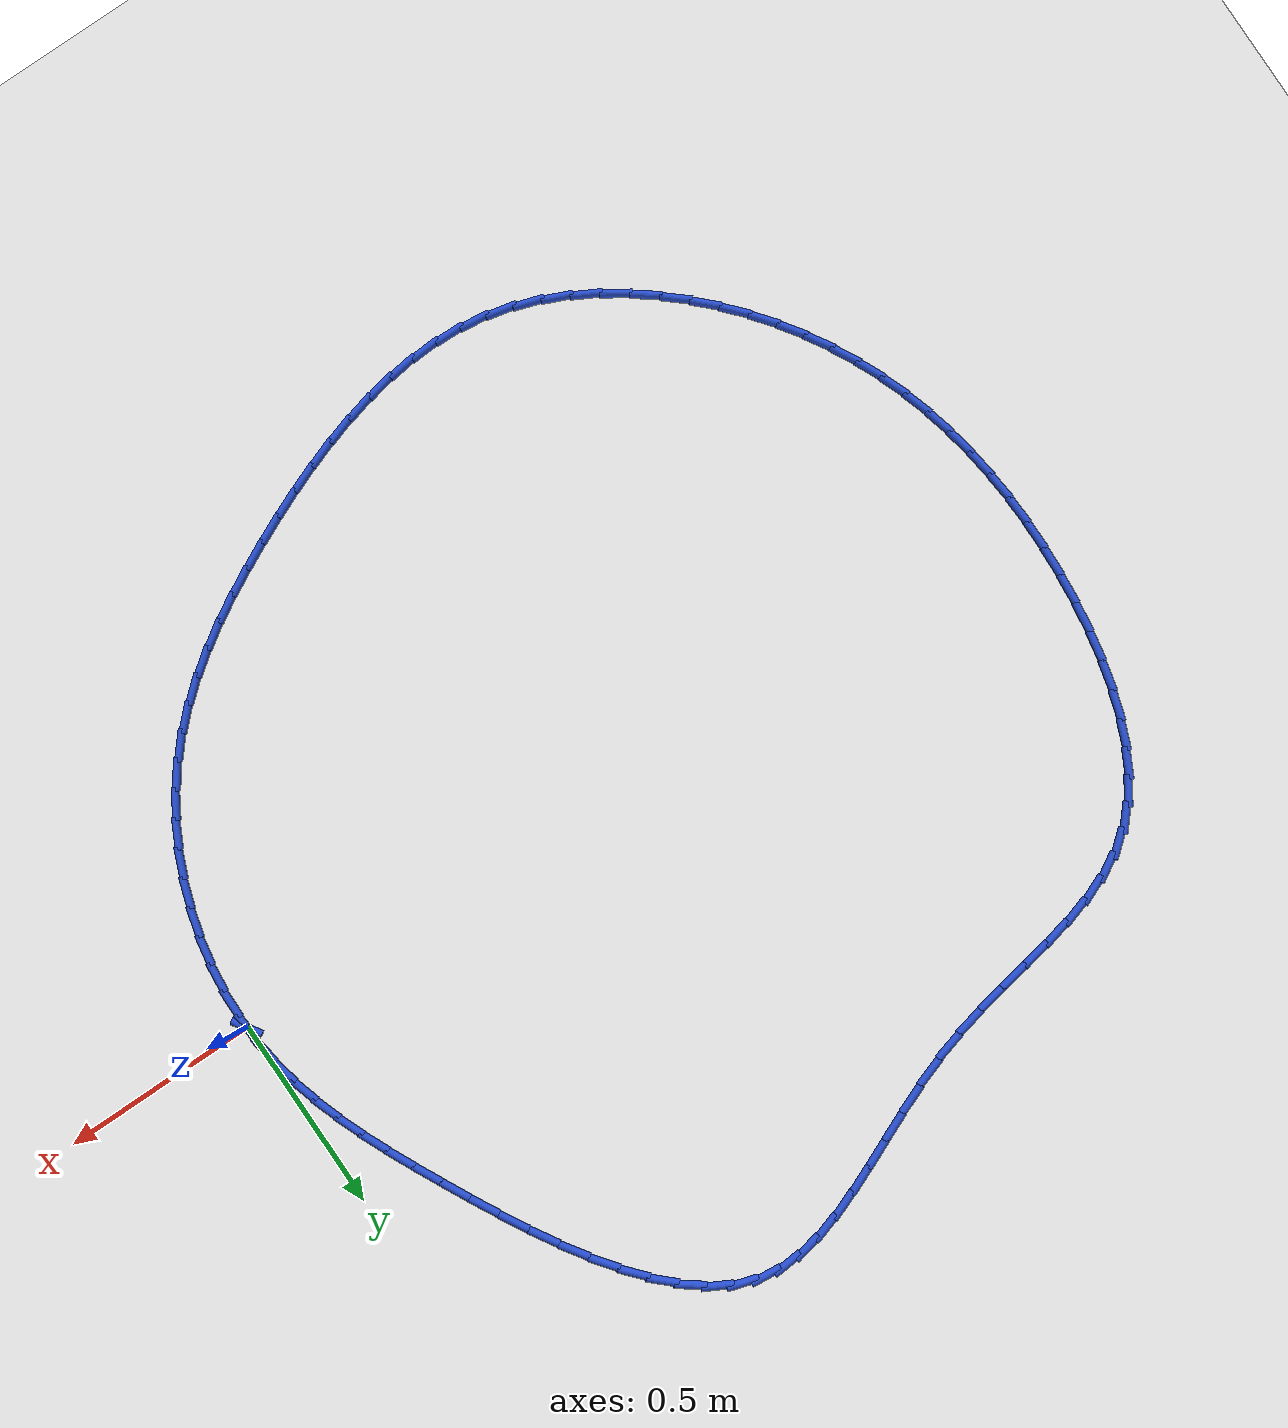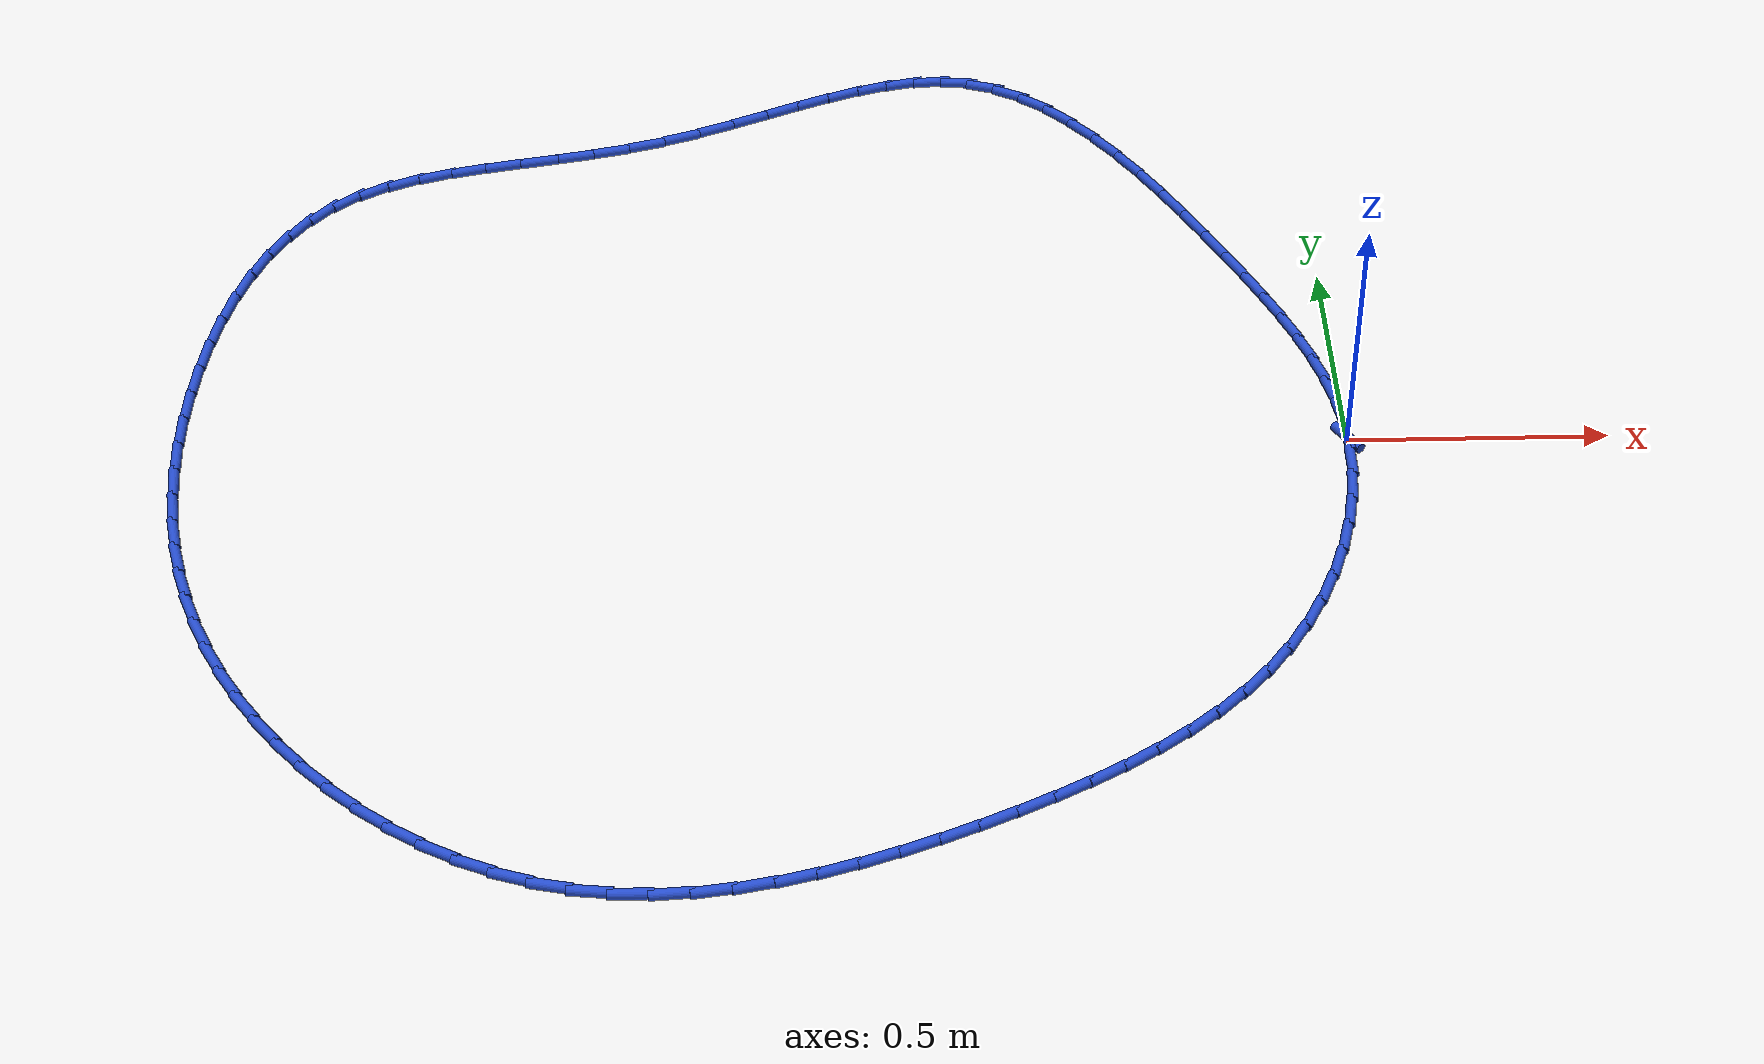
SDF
<sdf version="1.6">
 <world name="default">
  <light name="sun" type="directional">
   <pose>0 0 10 0 -0 0</pose>
   <diffuse>0.8 0.8 0.8 1</diffuse>
   <specular>0.2 0.2 0.2 1</specular>
   <attenuation>
    <range>1000</range>
    <constant>0.9</constant>
    <linear>0.01</linear>
    <quadratic>0.001</quadratic>
   </attenuation>
   <direction>-0.5 0.1 -0.9</direction>
  </light>
  <model name="ground_plane">
   <static>1</static>
   <link name="link">
    <collision name="collision">
     <geometry><plane><normal>0 0 1</normal><size>100 100</size></plane></geometry>
     <surface><friction><ode><mu>100</mu><mu2>50</mu2></ode></friction></surface>
    </collision>
    <visual name="visual">
     <cast_shadows>0</cast_shadows>
     <geometry><plane><normal>0 0 1</normal><size>100 100</size></plane></geometry>
     <material>
      <script><uri>file://media/materials/scripts/gazebo.material</uri><name>Gazebo/WhiteGlow</name></script>
     </material>
    </visual>
   </link>
  </model>
  <gravity>0 0 -9.8</gravity>
  <magnetic_field>6e-06 2.3e-05 -4.2e-05</magnetic_field>
  <atmosphere type="adiabatic"/>
  <physics name="default_physics" default="0" type="ode">
   <max_step_size>0.001</max_step_size>
   <real_time_factor>1</real_time_factor>
   <real_time_update_rate>1000</real_time_update_rate>
  </physics>
  <scene><ambient>0.4 0.4 0.4 1</ambient><background>0.7 0.7 0.7 1</background><shadows>1</shadows></scene>
  <spherical_coordinates>
   <surface_model>EARTH_WGS84</surface_model>
   <latitude_deg>0</latitude_deg>
   <longitude_deg>0</longitude_deg>
   <elevation>0</elevation>
   <heading_deg>0</heading_deg>
  </spherical_coordinates>
  <model name="line">
   <link name="link_0">
    <pose>-2.42861286636753e-17 1.249000902703301e-16 0.01 0 1.57 -1.5004241428444405</pose>
    <collision name="collision">
     <geometry><cylinder><radius>0.01</radius><length>0.08</length></cylinder></geometry>
    </collision>
    <visual name="visual">
     <material>
      <script><name>Gazebo/Blue</name><uri>file://media/materials/scripts/gazebo.material</uri></script>
     </material>
     <geometry><cylinder><radius>0.01</radius><length>0.08</length></cylinder></geometry>
    </visual>
   </link>
   <link name="link_1">
    <pose>-0.00477601694408151 0.06775589546085022 0.01 0 1.57 -1.4189308721183949</pose>
    <collision name="collision">
     <geometry><cylinder><radius>0.01</radius><length>0.08</length></cylinder></geometry>
    </collision>
    <visual name="visual">
     <material>
      <script><name>Gazebo/Blue</name><uri>file://media/materials/scripts/gazebo.material</uri></script>
     </material>
     <geometry><cylinder><radius>0.01</radius><length>0.08</length></cylinder></geometry>
    </visual>
   </link>
   <link name="link_2">
    <pose>-0.014967423616918156 0.13434732293556742 0.01 0 1.57 -1.3449747412913828</pose>
    <collision name="collision">
     <geometry><cylinder><radius>0.01</radius><length>0.08</length></cylinder></geometry>
    </collision>
    <visual name="visual">
     <material>
      <script><name>Gazebo/Blue</name><uri>file://media/materials/scripts/gazebo.material</uri></script>
     </material>
     <geometry><cylinder><radius>0.01</radius><length>0.08</length></cylinder></geometry>
    </visual>
   </link>
   <link name="link_3">
    <pose>-0.03008474728425073 0.20014915707746528 0.01 0 1.57 -1.280214814481173</pose>
    <collision name="collision">
     <geometry><cylinder><radius>0.01</radius><length>0.08</length></cylinder></geometry>
    </collision>
    <visual name="visual">
     <material>
      <script><name>Gazebo/Blue</name><uri>file://media/materials/scripts/gazebo.material</uri></script>
     </material>
     <geometry><cylinder><radius>0.01</radius><length>0.08</length></cylinder></geometry>
    </visual>
   </link>
   <link name="link_4">
    <pose>-0.049638515211819924 0.26553627253985734 0.01 0 1.57 -1.2255696863646401</pose>
    <collision name="collision">
     <geometry><cylinder><radius>0.01</radius><length>0.08</length></cylinder></geometry>
    </collision>
    <visual name="visual">
     <material>
      <script><name>Gazebo/Blue</name><uri>file://media/materials/scripts/gazebo.material</uri></script>
     </material>
     <geometry><cylinder><radius>0.01</radius><length>0.08</length></cylinder></geometry>
    </visual>
   </link>
   <link name="link_5">
    <pose>-0.07313925466536642 0.3308835439760569 0.01 0 1.57 -1.1813277615212272</pose>
    <collision name="collision">
     <geometry><cylinder><radius>0.01</radius><length>0.08</length></cylinder></geometry>
    </collision>
    <visual name="visual">
     <material>
      <script><name>Gazebo/Blue</name><uri>file://media/materials/scripts/gazebo.material</uri></script>
     </material>
     <geometry><cylinder><radius>0.01</radius><length>0.08</length></cylinder></geometry>
    </visual>
   </link>
   <link name="link_6">
    <pose>-0.100097492910631 0.3965658460393779 0.01 0 1.57 -1.1473191650190024</pose>
    <collision name="collision">
     <geometry><cylinder><radius>0.01</radius><length>0.08</length></cylinder></geometry>
    </collision>
    <visual name="visual">
     <material>
      <script><name>Gazebo/Blue</name><uri>file://media/materials/scripts/gazebo.material</uri></script>
     </material>
     <geometry><cylinder><radius>0.01</radius><length>0.08</length></cylinder></geometry>
    </visual>
   </link>
   <link name="link_7">
    <pose>-0.1300237572133543 0.46295805338313345 0.01 0 1.57 -1.1230852943788612</pose>
    <collision name="collision">
     <geometry><cylinder><radius>0.01</radius><length>0.08</length></cylinder></geometry>
    </collision>
    <visual name="visual">
     <material>
      <script><name>Gazebo/Blue</name><uri>file://media/materials/scripts/gazebo.material</uri></script>
     </material>
     <geometry><cylinder><radius>0.01</radius><length>0.08</length></cylinder></geometry>
    </visual>
   </link>
   <link name="link_8">
    <pose>-0.16242857483927703 0.5304350406606371 0.01 0 1.57 -1.1080004753264519</pose>
    <collision name="collision">
     <geometry><cylinder><radius>0.01</radius><length>0.08</length></cylinder></geometry>
    </collision>
    <visual name="visual">
     <material>
      <script><name>Gazebo/Blue</name><uri>file://media/materials/scripts/gazebo.material</uri></script>
     </material>
     <geometry><cylinder><radius>0.01</radius><length>0.08</length></cylinder></geometry>
    </visual>
   </link>
   <link name="link_9">
    <pose>-0.19682290641893088 0.5993704319639994 0.01 0 1.57 -1.0972849489356093</pose>
    <collision name="collision">
     <geometry><cylinder><radius>0.01</radius><length>0.08</length></cylinder></geometry>
    </collision>
    <visual name="visual">
     <material>
      <script><name>Gazebo/Blue</name><uri>file://media/materials/scripts/gazebo.material</uri></script>
     </material>
     <geometry><cylinder><radius>0.01</radius><length>0.08</length></cylinder></geometry>
    </visual>
   </link>
   <link name="link_10">
    <pose>-0.2328652948491554 0.6697119730943581 0.01 0 1.57 -1.0805003190553257</pose>
    <collision name="collision">
     <geometry><cylinder><radius>0.01</radius><length>0.08</length></cylinder></geometry>
    </collision>
    <visual name="visual">
     <material>
      <script><name>Gazebo/Blue</name><uri>file://media/materials/scripts/gazebo.material</uri></script>
     </material>
     <geometry><cylinder><radius>0.01</radius><length>0.08</length></cylinder></geometry>
    </visual>
   </link>
   <link name="link_11">
    <pose>-0.270576355979416 0.7403625755775054 0.01 0 1.57 -1.055733806610953</pose>
    <collision name="collision">
     <geometry><cylinder><radius>0.01</radius><length>0.08</length></cylinder></geometry>
    </collision>
    <visual name="visual">
     <material>
      <script><name>Gazebo/Blue</name><uri>file://media/materials/scripts/gazebo.material</uri></script>
     </material>
     <geometry><cylinder><radius>0.01</radius><length>0.08</length></cylinder></geometry>
    </visual>
   </link>
   <link name="link_12">
    <pose>-0.3100312191182713 0.8100678413967359 0.01 0 1.57 -1.0220267726518835</pose>
    <collision name="collision">
     <geometry><cylinder><radius>0.01</radius><length>0.08</length></cylinder></geometry>
    </collision>
    <visual name="visual">
     <material>
      <script><name>Gazebo/Blue</name><uri>file://media/materials/scripts/gazebo.material</uri></script>
     </material>
     <geometry><cylinder><radius>0.01</radius><length>0.08</length></cylinder></geometry>
    </visual>
   </link>
   <link name="link_13">
    <pose>-0.3513050135742803 0.8775733725353443 0.01 0 1.57 -0.9777638944376631</pose>
    <collision name="collision">
     <geometry><cylinder><radius>0.01</radius><length>0.08</length></cylinder></geometry>
    </collision>
    <visual name="visual">
     <material>
      <script><name>Gazebo/Blue</name><uri>file://media/materials/scripts/gazebo.material</uri></script>
     </material>
     <geometry><cylinder><radius>0.01</radius><length>0.08</length></cylinder></geometry>
    </visual>
   </link>
   <link name="link_14">
    <pose>-0.39447286865600184 0.9416247709766248 0.01 0 1.57 -0.9205364838850414</pose>
    <collision name="collision">
     <geometry><cylinder><radius>0.01</radius><length>0.08</length></cylinder></geometry>
    </collision>
    <visual name="visual">
     <material>
      <script><name>Gazebo/Blue</name><uri>file://media/materials/scripts/gazebo.material</uri></script>
     </material>
     <geometry><cylinder><radius>0.01</radius><length>0.08</length></cylinder></geometry>
    </visual>
   </link>
   <link name="link_15">
    <pose>-0.43960991367199453 1.0009676387038722 0.01 0 1.57 -0.8469600363308281</pose>
    <collision name="collision">
     <geometry><cylinder><radius>0.01</radius><length>0.08</length></cylinder></geometry>
    </collision>
    <visual name="visual">
     <material>
      <script><name>Gazebo/Blue</name><uri>file://media/materials/scripts/gazebo.material</uri></script>
     </material>
     <geometry><cylinder><radius>0.01</radius><length>0.08</length></cylinder></geometry>
    </visual>
   </link>
   <link name="link_16">
    <pose>-0.4867912779308172 1.0543475777003806 0.01 0 1.57 -0.7525366685008904</pose>
    <collision name="collision">
     <geometry><cylinder><radius>0.01</radius><length>0.08</length></cylinder></geometry>
    </collision>
    <visual name="visual">
     <material>
      <script><name>Gazebo/Blue</name><uri>file://media/materials/scripts/gazebo.material</uri></script>
     </material>
     <geometry><cylinder><radius>0.01</radius><length>0.08</length></cylinder></geometry>
    </visual>
   </link>
   <link name="link_17">
    <pose>-0.5360920907410289 1.1005101899494452 0.01 0 1.57 -0.631833959872122</pose>
    <collision name="collision">
     <geometry><cylinder><radius>0.01</radius><length>0.08</length></cylinder></geometry>
    </collision>
    <visual name="visual">
     <material>
      <script><name>Gazebo/Blue</name><uri>file://media/materials/scripts/gazebo.material</uri></script>
     </material>
     <geometry><cylinder><radius>0.01</radius><length>0.08</length></cylinder></geometry>
    </visual>
   </link>
   <link name="link_18">
    <pose>-0.5875874814111881 1.1382010774343598 0.01 0 1.57 -0.4796205093005573</pose>
    <collision name="collision">
     <geometry><cylinder><radius>0.01</radius><length>0.08</length></cylinder></geometry>
    </collision>
    <visual name="visual">
     <material>
      <script><name>Gazebo/Blue</name><uri>file://media/materials/scripts/gazebo.material</uri></script>
     </material>
     <geometry><cylinder><radius>0.01</radius><length>0.08</length></cylinder></geometry>
    </visual>
   </link>
   <link name="link_19">
    <pose>-0.641352579249854 1.1661658421384198 0.01 0 1.57 -0.2939282067975372</pose>
    <collision name="collision">
     <geometry><cylinder><radius>0.01</radius><length>0.08</length></cylinder></geometry>
    </collision>
    <visual name="visual">
     <material>
      <script><name>Gazebo/Blue</name><uri>file://media/materials/scripts/gazebo.material</uri></script>
     </material>
     <geometry><cylinder><radius>0.01</radius><length>0.08</length></cylinder></geometry>
    </visual>
   </link>
   <link name="link_20">
    <pose>-0.6974625135655852 1.183150086044919 0.01 0 1.57 -0.08918605198172115</pose>
    <collision name="collision">
     <geometry><cylinder><radius>0.01</radius><length>0.08</length></cylinder></geometry>
    </collision>
    <visual name="visual">
     <material>
      <script><name>Gazebo/Blue</name><uri>file://media/materials/scripts/gazebo.material</uri></script>
     </material>
     <geometry><cylinder><radius>0.01</radius><length>0.08</length></cylinder></geometry>
    </visual>
   </link>
   <link name="link_21">
    <pose>-0.7559564777158664 1.1883808077837392 0.01 0 1.57 0.08652087412443932</pose>
    <collision name="collision">
     <geometry><cylinder><radius>0.01</radius><length>0.08</length></cylinder></geometry>
    </collision>
    <visual name="visual">
     <material>
      <script><name>Gazebo/Blue</name><uri>file://media/materials/scripts/gazebo.material</uri></script>
     </material>
     <geometry><cylinder><radius>0.01</radius><length>0.08</length></cylinder></geometry>
    </visual>
   </link>
   <link name="link_22">
    <pose>-0.8167224915425655 1.1831101207040606 0.01 0 1.57 0.21886301353608173</pose>
    <collision name="collision">
     <geometry><cylinder><radius>0.01</radius><length>0.08</length></cylinder></geometry>
    </collision>
    <visual name="visual">
     <material>
      <script><name>Gazebo/Blue</name><uri>file://media/materials/scripts/gazebo.material</uri></script>
     </material>
     <geometry><cylinder><radius>0.01</radius><length>0.08</length></cylinder></geometry>
    </visual>
   </link>
   <link name="link_23">
    <pose>-0.8796088290724194 1.169122571596993 0.01 0 1.57 0.31202697062691764</pose>
    <collision name="collision">
     <geometry><cylinder><radius>0.01</radius><length>0.08</length></cylinder></geometry>
    </collision>
    <visual name="visual">
     <material>
      <script><name>Gazebo/Blue</name><uri>file://media/materials/scripts/gazebo.material</uri></script>
     </material>
     <geometry><cylinder><radius>0.01</radius><length>0.08</length></cylinder></geometry>
    </visual>
   </link>
   <link name="link_24">
    <pose>-0.9444637641530221 1.1482027096534482 0.01 0 1.57 0.3727100899897233</pose>
    <collision name="collision">
     <geometry><cylinder><radius>0.01</radius><length>0.08</length></cylinder></geometry>
    </collision>
    <visual name="visual">
     <material>
      <script><name>Gazebo/Blue</name><uri>file://media/materials/scripts/gazebo.material</uri></script>
     </material>
     <geometry><cylinder><radius>0.01</radius><length>0.08</length></cylinder></geometry>
    </visual>
   </link>
   <link name="link_25">
    <pose>-1.0111355706319682 1.122135084064338 0.01 0 1.57 0.4066654066522746</pose>
    <collision name="collision">
     <geometry><cylinder><radius>0.01</radius><length>0.08</length></cylinder></geometry>
    </collision>
    <visual name="visual">
     <material>
      <script><name>Gazebo/Blue</name><uri>file://media/materials/scripts/gazebo.material</uri></script>
     </material>
     <geometry><cylinder><radius>0.01</radius><length>0.08</length></cylinder></geometry>
    </visual>
   </link>
   <link name="link_26">
    <pose>-1.0794725223568513 1.092704244020574 0.01 0 1.57 0.4178045884942086</pose>
    <collision name="collision">
     <geometry><cylinder><radius>0.01</radius><length>0.08</length></cylinder></geometry>
    </collision>
    <visual name="visual">
     <material>
      <script><name>Gazebo/Blue</name><uri>file://media/materials/scripts/gazebo.material</uri></script>
     </material>
     <geometry><cylinder><radius>0.01</radius><length>0.08</length></cylinder></geometry>
    </visual>
   </link>
   <link name="link_27">
    <pose>-1.1493228931752653 1.0616947387130675 0.01 0 1.57 0.4082581201088372</pose>
    <collision name="collision">
     <geometry><cylinder><radius>0.01</radius><length>0.08</length></cylinder></geometry>
    </collision>
    <visual name="visual">
     <material>
      <script><name>Gazebo/Blue</name><uri>file://media/materials/scripts/gazebo.material</uri></script>
     </material>
     <geometry><cylinder><radius>0.01</radius><length>0.08</length></cylinder></geometry>
    </visual>
   </link>
   <link name="link_28">
    <pose>-1.220534956934804 1.03089111733273 0.01 0 1.57 0.3786525501528418</pose>
    <collision name="collision">
     <geometry><cylinder><radius>0.01</radius><length>0.08</length></cylinder></geometry>
    </collision>
    <visual name="visual">
     <material>
      <script><name>Gazebo/Blue</name><uri>file://media/materials/scripts/gazebo.material</uri></script>
     </material>
     <geometry><cylinder><radius>0.01</radius><length>0.08</length></cylinder></geometry>
    </visual>
   </link>
   <link name="link_29">
    <pose>-1.2929569874830613 1.0020779290704733 0.01 0 1.57 0.32841371684221204</pose>
    <collision name="collision">
     <geometry><cylinder><radius>0.01</radius><length>0.08</length></cylinder></geometry>
    </collision>
    <visual name="visual">
     <material>
      <script><name>Gazebo/Blue</name><uri>file://media/materials/scripts/gazebo.material</uri></script>
     </material>
     <geometry><cylinder><radius>0.01</radius><length>0.08</length></cylinder></geometry>
    </visual>
   </link>
   <link name="link_30">
    <pose>-1.3664371817624026 0.9770393002869852 0.01 0 1.57 0.26550910407413436</pose>
    <collision name="collision">
     <geometry><cylinder><radius>0.01</radius><length>0.08</length></cylinder></geometry>
    </collision>
    <visual name="visual">
     <material>
      <script><name>Gazebo/Blue</name><uri>file://media/materials/scripts/gazebo.material</uri></script>
     </material>
     <geometry><cylinder><radius>0.01</radius><length>0.08</length></cylinder></geometry>
    </visual>
   </link>
   <link name="link_31">
    <pose>-1.4406941117824714 0.9568466705715823 0.01 0 1.57 0.21766108257038289</pose>
    <collision name="collision">
     <geometry><cylinder><radius>0.01</radius><length>0.08</length></cylinder></geometry>
    </collision>
    <visual name="visual">
     <material>
      <script><name>Gazebo/Blue</name><uri>file://media/materials/scripts/gazebo.material</uri></script>
     </material>
     <geometry><cylinder><radius>0.01</radius><length>0.08</length></cylinder></geometry>
    </visual>
   </link>
   <link name="link_32">
    <pose>-1.515051650768223 0.9404013985220834 0.01 0 1.57 0.19042846810005598</pose>
    <collision name="collision">
     <geometry><cylinder><radius>0.01</radius><length>0.08</length></cylinder></geometry>
    </collision>
    <visual name="visual">
     <material>
      <script><name>Gazebo/Blue</name><uri>file://media/materials/scripts/gazebo.material</uri></script>
     </material>
     <geometry><cylinder><radius>0.01</radius><length>0.08</length></cylinder></geometry>
    </visual>
   </link>
   <link name="link_33">
    <pose>-1.5887588189696302 0.9261932959455191 0.01 0 1.57 0.1843294293974688</pose>
    <collision name="collision">
     <geometry><cylinder><radius>0.01</radius><length>0.08</length></cylinder></geometry>
    </collision>
    <visual name="visual">
     <material>
      <script><name>Gazebo/Blue</name><uri>file://media/materials/scripts/gazebo.material</uri></script>
     </material>
     <geometry><cylinder><radius>0.01</radius><length>0.08</length></cylinder></geometry>
    </visual>
   </link>
   <link name="link_34">
    <pose>-1.6610646366366655 0.9127121746489207 0.01 0 1.57 0.20059569142569664</pose>
    <collision name="collision">
     <geometry><cylinder><radius>0.01</radius><length>0.08</length></cylinder></geometry>
    </collision>
    <visual name="visual">
     <material>
      <script><name>Gazebo/Blue</name><uri>file://media/materials/scripts/gazebo.material</uri></script>
     </material>
     <geometry><cylinder><radius>0.01</radius><length>0.08</length></cylinder></geometry>
    </visual>
   </link>
   <link name="link_35">
    <pose>-1.7312181240193023 0.8984478464393186 0.01 0 1.57 0.24140923690677535</pose>
    <collision name="collision">
     <geometry><cylinder><radius>0.01</radius><length>0.08</length></cylinder></geometry>
    </collision>
    <visual name="visual">
     <material>
      <script><name>Gazebo/Blue</name><uri>file://media/materials/scripts/gazebo.material</uri></script>
     </material>
     <geometry><cylinder><radius>0.01</radius><length>0.08</length></cylinder></geometry>
    </visual>
   </link>
   <link name="link_36">
    <pose>-1.7984683013675136 0.8818901231237442 0.01 0 1.57 0.3098544545396993</pose>
    <collision name="collision">
     <geometry><cylinder><radius>0.01</radius><length>0.08</length></cylinder></geometry>
    </collision>
    <visual name="visual">
     <material>
      <script><name>Gazebo/Blue</name><uri>file://media/materials/scripts/gazebo.material</uri></script>
     </material>
     <geometry><cylinder><radius>0.01</radius><length>0.08</length></cylinder></geometry>
    </visual>
   </link>
   <link name="link_37">
    <pose>-1.862064188931272 0.8615288165092279 0.01 0 1.57 0.4092748878632669</pose>
    <collision name="collision">
     <geometry><cylinder><radius>0.01</radius><length>0.08</length></cylinder></geometry>
    </collision>
    <visual name="visual">
     <material>
      <script><name>Gazebo/Blue</name><uri>file://media/materials/scripts/gazebo.material</uri></script>
     </material>
     <geometry><cylinder><radius>0.01</radius><length>0.08</length></cylinder></geometry>
    </visual>
   </link>
   <link name="link_38">
    <pose>-1.9212548069605506 0.8358537384028009 0.01 0 1.57 0.5414859013523736</pose>
    <collision name="collision">
     <geometry><cylinder><radius>0.01</radius><length>0.08</length></cylinder></geometry>
    </collision>
    <visual name="visual">
     <material>
      <script><name>Gazebo/Blue</name><uri>file://media/materials/scripts/gazebo.material</uri></script>
     </material>
     <geometry><cylinder><radius>0.01</radius><length>0.08</length></cylinder></geometry>
    </visual>
   </link>
   <link name="link_39">
    <pose>-1.9752891757053226 0.8033547006114944 0.01 0 1.57 0.7018226279422404</pose>
    <collision name="collision">
     <geometry><cylinder><radius>0.01</radius><length>0.08</length></cylinder></geometry>
    </collision>
    <visual name="visual">
     <material>
      <script><name>Gazebo/Blue</name><uri>file://media/materials/scripts/gazebo.material</uri></script>
     </material>
     <geometry><cylinder><radius>0.01</radius><length>0.08</length></cylinder></geometry>
    </visual>
   </link>
   <link name="link_40">
    <pose>-2.023461124577429 0.7626297079792681 0.01 0 1.57 0.858985245199451</pose>
    <collision name="collision">
     <geometry><cylinder><radius>0.01</radius><length>0.08</length></cylinder></geometry>
    </collision>
    <visual name="visual">
     <material>
      <script><name>Gazebo/Blue</name><uri>file://media/materials/scripts/gazebo.material</uri></script>
     </material>
     <geometry><cylinder><radius>0.01</radius><length>0.08</length></cylinder></geometry>
    </visual>
   </link>
   <link name="link_41">
    <pose>-2.0656597696501637 0.7137141024717936 0.01 0 1.57 0.993114740929196</pose>
    <collision name="collision">
     <geometry><cylinder><radius>0.01</radius><length>0.08</length></cylinder></geometry>
    </collision>
    <visual name="visual">
     <material>
      <script><name>Gazebo/Blue</name><uri>file://media/materials/scripts/gazebo.material</uri></script>
     </material>
     <geometry><cylinder><radius>0.01</radius><length>0.08</length></cylinder></geometry>
    </visual>
   </link>
   <link name="link_42">
    <pose>-2.1021968319423796 0.65766361810349 0.01 0 1.57 1.1053181703141357</pose>
    <collision name="collision">
     <geometry><cylinder><radius>0.01</radius><length>0.08</length></cylinder></geometry>
    </collision>
    <visual name="visual">
     <material>
      <script><name>Gazebo/Blue</name><uri>file://media/materials/scripts/gazebo.material</uri></script>
     </material>
     <geometry><cylinder><radius>0.01</radius><length>0.08</length></cylinder></geometry>
    </visual>
   </link>
   <link name="link_43">
    <pose>-2.1333930294756462 0.5955557124159842 0.01 0 1.57 1.1987878307803628</pose>
    <collision name="collision">
     <geometry><cylinder><radius>0.01</radius><length>0.08</length></cylinder></geometry>
    </collision>
    <visual name="visual">
     <material>
      <script><name>Gazebo/Blue</name><uri>file://media/materials/scripts/gazebo.material</uri></script>
     </material>
     <geometry><cylinder><radius>0.01</radius><length>0.08</length></cylinder></geometry>
    </visual>
   </link>
   <link name="link_44">
    <pose>-2.1595690802715315 0.5284678429509041 0.01 0 1.57 1.27702129321699</pose>
    <collision name="collision">
     <geometry><cylinder><radius>0.01</radius><length>0.08</length></cylinder></geometry>
    </collision>
    <visual name="visual">
     <material>
      <script><name>Gazebo/Blue</name><uri>file://media/materials/scripts/gazebo.material</uri></script>
     </material>
     <geometry><cylinder><radius>0.01</radius><length>0.08</length></cylinder></geometry>
    </visual>
   </link>
   <link name="link_45">
    <pose>-2.181045702351604 0.45747746724987737 0.01 0 1.57 1.3431798119628373</pose>
    <collision name="collision">
     <geometry><cylinder><radius>0.01</radius><length>0.08</length></cylinder></geometry>
    </collision>
    <visual name="visual">
     <material>
      <script><name>Gazebo/Blue</name><uri>file://media/materials/scripts/gazebo.material</uri></script>
     </material>
     <geometry><cylinder><radius>0.01</radius><length>0.08</length></cylinder></geometry>
    </visual>
   </link>
   <link name="link_46">
    <pose>-2.1981436137374333 0.38366204285453176 0.01 0 1.57 1.3999093046247215</pose>
    <collision name="collision">
     <geometry><cylinder><radius>0.01</radius><length>0.08</length></cylinder></geometry>
    </collision>
    <visual name="visual">
     <material>
      <script><name>Gazebo/Blue</name><uri>file://media/materials/scripts/gazebo.material</uri></script>
     </material>
     <geometry><cylinder><radius>0.01</radius><length>0.08</length></cylinder></geometry>
    </visual>
   </link>
   <link name="link_47">
    <pose>-2.2111835324505877 0.30809902730649474 0.01 0 1.57 1.4493678271023214</pose>
    <collision name="collision">
     <geometry><cylinder><radius>0.01</radius><length>0.08</length></cylinder></geometry>
    </collision>
    <visual name="visual">
     <material>
      <script><name>Gazebo/Blue</name><uri>file://media/materials/scripts/gazebo.material</uri></script>
     </material>
     <geometry><cylinder><radius>0.01</radius><length>0.08</length></cylinder></geometry>
    </visual>
   </link>
   <link name="link_48">
    <pose>-2.2204861765126362 0.23186587814739454 0.01 0 1.57 1.4933680439120873</pose>
    <collision name="collision">
     <geometry><cylinder><radius>0.01</radius><length>0.08</length></cylinder></geometry>
    </collision>
    <visual name="visual">
     <material>
      <script><name>Gazebo/Blue</name><uri>file://media/materials/scripts/gazebo.material</uri></script>
     </material>
     <geometry><cylinder><radius>0.01</radius><length>0.08</length></cylinder></geometry>
    </visual>
   </link>
   <link name="link_49">
    <pose>-2.226369556550451 0.1560328893425557 0.01 0 1.57 1.535594986219505</pose>
    <collision name="collision">
     <geometry><cylinder><radius>0.01</radius><length>0.08</length></cylinder></geometry>
    </collision>
    <visual name="visual">
     <material>
      <script><name>Gazebo/Blue</name><uri>file://media/materials/scripts/gazebo.material</uri></script>
     </material>
     <geometry><cylinder><radius>0.01</radius><length>0.08</length></cylinder></geometry>
    </visual>
   </link>
   <link name="link_50">
    <pose>-2.229002225484932 0.08127490025944499 0.01 0 1.57 -1.5616395760227895</pose>
    <collision name="collision">
     <geometry><cylinder><radius>0.01</radius><length>0.08</length></cylinder></geometry>
    </collision>
    <visual name="visual">
     <material>
      <script><name>Gazebo/Blue</name><uri>file://media/materials/scripts/gazebo.material</uri></script>
     </material>
     <geometry><cylinder><radius>0.01</radius><length>0.08</length></cylinder></geometry>
    </visual>
   </link>
   <link name="link_51">
    <pose>-2.228328250343162 0.007672776349729429 0.01 0 1.57 -1.514856883005026</pose>
    <collision name="collision">
     <geometry><cylinder><radius>0.01</radius><length>0.08</length></cylinder></geometry>
    </collision>
    <visual name="visual">
     <material>
      <script><name>Gazebo/Blue</name><uri>file://media/materials/scripts/gazebo.material</uri></script>
     </material>
     <geometry><cylinder><radius>0.01</radius><length>0.08</length></cylinder></geometry>
    </visual>
   </link>
   <link name="link_52">
    <pose>-2.2242732022894978 -0.06474155568926554 0.01 0 1.57 -1.4656918418133873</pose>
    <collision name="collision">
     <geometry><cylinder><radius>0.01</radius><length>0.08</length></cylinder></geometry>
    </collision>
    <visual name="visual">
     <material>
      <script><name>Gazebo/Blue</name><uri>file://media/materials/scripts/gazebo.material</uri></script>
     </material>
     <geometry><cylinder><radius>0.01</radius><length>0.08</length></cylinder></geometry>
    </visual>
   </link>
   <link name="link_53">
    <pose>-2.216762652488293 -0.13593616916021428 0.01 0 1.57 -1.4142383379573333</pose>
    <collision name="collision">
     <geometry><cylinder><radius>0.01</radius><length>0.08</length></cylinder></geometry>
    </collision>
    <visual name="visual">
     <material>
      <script><name>Gazebo/Blue</name><uri>file://media/materials/scripts/gazebo.material</uri></script>
     </material>
     <geometry><cylinder><radius>0.01</radius><length>0.08</length></cylinder></geometry>
    </visual>
   </link>
   <link name="link_54">
    <pose>-2.205722172103906 -0.2058791373657913 0.01 0 1.57 -1.360648540016416</pose>
    <collision name="collision">
     <geometry><cylinder><radius>0.01</radius><length>0.08</length></cylinder></geometry>
    </collision>
    <visual name="visual">
     <material>
      <script><name>Gazebo/Blue</name><uri>file://media/materials/scripts/gazebo.material</uri></script>
     </material>
     <geometry><cylinder><radius>0.01</radius><length>0.08</length></cylinder></geometry>
    </visual>
   </link>
   <link name="link_55">
    <pose>-2.19107733230069 -0.27453853360867114 0.01 0 1.57 -1.3051371545914272</pose>
    <collision name="collision">
     <geometry><cylinder><radius>0.01</radius><length>0.08</length></cylinder></geometry>
    </collision>
    <visual name="visual">
     <material>
      <script><name>Gazebo/Blue</name><uri>file://media/materials/scripts/gazebo.material</uri></script>
     </material>
     <geometry><cylinder><radius>0.01</radius><length>0.08</length></cylinder></geometry>
    </visual>
   </link>
   <link name="link_56">
    <pose>-2.172753704243002 -0.3418824311915281 0.01 0 1.57 -1.247982169428404</pose>
    <collision name="collision">
     <geometry><cylinder><radius>0.01</radius><length>0.08</length></cylinder></geometry>
    </collision>
    <visual name="visual">
     <material>
      <script><name>Gazebo/Blue</name><uri>file://media/materials/scripts/gazebo.material</uri></script>
     </material>
     <geometry><cylinder><radius>0.01</radius><length>0.08</length></cylinder></geometry>
    </visual>
   </link>
   <link name="link_57">
    <pose>-2.1506768590951983 -0.4078789034170369 0.01 0 1.57 -1.189521160314957</pose>
    <collision name="collision">
     <geometry><cylinder><radius>0.01</radius><length>0.08</length></cylinder></geometry>
    </collision>
    <visual name="visual">
     <material>
      <script><name>Gazebo/Blue</name><uri>file://media/materials/scripts/gazebo.material</uri></script>
     </material>
     <geometry><cylinder><radius>0.01</radius><length>0.08</length></cylinder></geometry>
    </visual>
   </link>
   <link name="link_58">
    <pose>-2.1247723680216337 -0.47249602358787113 0.01 0 1.57 -1.1301426802483352</pose>
    <collision name="collision">
     <geometry><cylinder><radius>0.01</radius><length>0.08</length></cylinder></geometry>
    </collision>
    <visual name="visual">
     <material>
      <script><name>Gazebo/Blue</name><uri>file://media/materials/scripts/gazebo.material</uri></script>
     </material>
     <geometry><cylinder><radius>0.01</radius><length>0.08</length></cylinder></geometry>
    </visual>
   </link>
   <link name="link_59">
    <pose>-2.094965802186665 -0.5357018650067068 0.01 0 1.57 -1.0702729105585747</pose>
    <collision name="collision">
     <geometry><cylinder><radius>0.01</radius><length>0.08</length></cylinder></geometry>
    </collision>
    <visual name="visual">
     <material>
      <script><name>Gazebo/Blue</name><uri>file://media/materials/scripts/gazebo.material</uri></script>
     </material>
     <geometry><cylinder><radius>0.01</radius><length>0.08</length></cylinder></geometry>
    </visual>
   </link>
   <link name="link_60">
    <pose>-2.0611827327546464 -0.5974645009762175 0.01 0 1.57 -1.010358517580957</pose>
    <collision name="collision">
     <geometry><cylinder><radius>0.01</radius><length>0.08</length></cylinder></geometry>
    </collision>
    <visual name="visual">
     <material>
      <script><name>Gazebo/Blue</name><uri>file://media/materials/scripts/gazebo.material</uri></script>
     </material>
     <geometry><cylinder><radius>0.01</radius><length>0.08</length></cylinder></geometry>
    </visual>
   </link>
   <link name="link_61">
    <pose>-2.0233487315934373 -0.6577520038495587 0.01 0 1.57 -0.9508743133578977</pose>
    <collision name="collision">
     <geometry><cylinder><radius>0.01</radius><length>0.08</length></cylinder></geometry>
    </collision>
    <visual name="visual">
     <material>
      <script><name>Gazebo/Blue</name><uri>file://media/materials/scripts/gazebo.material</uri></script>
     </material>
     <geometry><cylinder><radius>0.01</radius><length>0.08</length></cylinder></geometry>
    </visual>
   </link>
   <link name="link_62">
    <pose>-1.9814547888212233 -0.7164441509417641 0.01 0 1.57 -0.8917522596239201</pose>
    <collision name="collision">
     <geometry><cylinder><radius>0.01</radius><length>0.08</length></cylinder></geometry>
    </collision>
    <visual name="visual">
     <material>
      <script><name>Gazebo/Blue</name><uri>file://media/materials/scripts/gazebo.material</uri></script>
     </material>
     <geometry><cylinder><radius>0.01</radius><length>0.08</length></cylinder></geometry>
    </visual>
   </link>
   <link name="link_63">
    <pose>-1.935736445567776 -0.77309064897161 0.01 0 1.57 -0.8320465411199826</pose>
    <collision name="collision">
     <geometry><cylinder><radius>0.01</radius><length>0.08</length></cylinder></geometry>
    </collision>
    <visual name="visual">
     <material>
      <script><name>Gazebo/Blue</name><uri>file://media/materials/scripts/gazebo.material</uri></script>
     </material>
     <geometry><cylinder><radius>0.01</radius><length>0.08</length></cylinder></geometry>
    </visual>
   </link>
   <link name="link_64">
    <pose>-1.8864863768704183 -0.8271640910004445 0.01 0 1.57 -0.77074515007997</pose>
    <collision name="collision">
     <geometry><cylinder><radius>0.01</radius><length>0.08</length></cylinder></geometry>
    </collision>
    <visual name="visual">
     <material>
      <script><name>Gazebo/Blue</name><uri>file://media/materials/scripts/gazebo.material</uri></script>
     </material>
     <geometry><cylinder><radius>0.01</radius><length>0.08</length></cylinder></geometry>
    </visual>
   </link>
   <link name="link_65">
    <pose>-1.833997257766471 -0.8781370700896158 0.01 0 1.57 -0.7068450386117647</pose>
    <collision name="collision">
     <geometry><cylinder><radius>0.01</radius><length>0.08</length></cylinder></geometry>
    </collision>
    <visual name="visual">
     <material>
      <script><name>Gazebo/Blue</name><uri>file://media/materials/scripts/gazebo.material</uri></script>
     </material>
     <geometry><cylinder><radius>0.01</radius><length>0.08</length></cylinder></geometry>
    </visual>
   </link>
   <link name="link_66">
    <pose>-1.7785617632932575 -0.9254821793004719 0.01 0 1.57 -0.6393338343858264</pose>
    <collision name="collision">
     <geometry><cylinder><radius>0.01</radius><length>0.08</length></cylinder></geometry>
    </collision>
    <visual name="visual">
     <material>
      <script><name>Gazebo/Blue</name><uri>file://media/materials/scripts/gazebo.material</uri></script>
     </material>
     <geometry><cylinder><radius>0.01</radius><length>0.08</length></cylinder></geometry>
    </visual>
   </link>
   <link name="link_67">
    <pose>-1.720472568488099 -0.9686720116943606 0.01 0 1.57 -0.5671862460604283</pose>
    <collision name="collision">
     <geometry><cylinder><radius>0.01</radius><length>0.08</length></cylinder></geometry>
    </collision>
    <visual name="visual">
     <material>
      <script><name>Gazebo/Blue</name><uri>file://media/materials/scripts/gazebo.material</uri></script>
     </material>
     <geometry><cylinder><radius>0.01</radius><length>0.08</length></cylinder></geometry>
    </visual>
   </link>
   <link name="link_68">
    <pose>-1.660022348388318 -1.0071791603326299 0.01 0 1.57 -0.48938207339226203</pose>
    <collision name="collision">
     <geometry><cylinder><radius>0.01</radius><length>0.08</length></cylinder></geometry>
    </collision>
    <visual name="visual">
     <material>
      <script><name>Gazebo/Blue</name><uri>file://media/materials/scripts/gazebo.material</uri></script>
     </material>
     <geometry><cylinder><radius>0.01</radius><length>0.08</length></cylinder></geometry>
    </visual>
   </link>
   <link name="link_69">
    <pose>-1.5975037780312364 -1.0404762182766278 0.01 0 1.57 -0.4049559555777391</pose>
    <collision name="collision">
     <geometry><cylinder><radius>0.01</radius><length>0.08</length></cylinder></geometry>
    </collision>
    <visual name="visual">
     <material>
      <script><name>Gazebo/Blue</name><uri>file://media/materials/scripts/gazebo.material</uri></script>
     </material>
     <geometry><cylinder><radius>0.01</radius><length>0.08</length></cylinder></geometry>
    </visual>
   </link>
   <link name="link_70">
    <pose>-1.5332095324541766 -1.0680357785877026 0.01 0 1.57 -0.31309088989173256</pose>
    <collision name="collision">
     <geometry><cylinder><radius>0.01</radius><length>0.08</length></cylinder></geometry>
    </collision>
    <visual name="visual">
     <material>
      <script><name>Gazebo/Blue</name><uri>file://media/materials/scripts/gazebo.material</uri></script>
     </material>
     <geometry><cylinder><radius>0.01</radius><length>0.08</length></cylinder></geometry>
    </visual>
   </link>
   <link name="link_71">
    <pose>-1.4674322866944611 -1.0893304343272023 0.01 0 1.57 -0.2134575105942773</pose>
    <collision name="collision">
     <geometry><cylinder><radius>0.01</radius><length>0.08</length></cylinder></geometry>
    </collision>
    <visual name="visual">
     <material>
      <script><name>Gazebo/Blue</name><uri>file://media/materials/scripts/gazebo.material</uri></script>
     </material>
     <geometry><cylinder><radius>0.01</radius><length>0.08</length></cylinder></geometry>
    </visual>
   </link>
   <link name="link_72">
    <pose>-1.400463582081624 -1.1038465512364917 0.01 0 1.57 -0.11270066069599426</pose>
    <collision name="collision">
     <geometry><cylinder><radius>0.01</radius><length>0.08</length></cylinder></geometry>
    </collision>
    <visual name="visual">
     <material>
      <script><name>Gazebo/Blue</name><uri>file://media/materials/scripts/gazebo.material</uri></script>
     </material>
     <geometry><cylinder><radius>0.01</radius><length>0.08</length></cylinder></geometry>
    </visual>
   </link>
   <link name="link_73">
    <pose>-1.3325569510230033 -1.1115322407813795 0.01 0 1.57 -0.019866401011162202</pose>
    <collision name="collision">
     <geometry><cylinder><radius>0.01</radius><length>0.08</length></cylinder></geometry>
    </collision>
    <visual name="visual">
     <material>
      <script><name>Gazebo/Blue</name><uri>file://media/materials/scripts/gazebo.material</uri></script>
     </material>
     <geometry><cylinder><radius>0.01</radius><length>0.08</length></cylinder></geometry>
    </visual>
   </link>
   <link name="link_74">
    <pose>-1.2639197979384669 -1.1128959934060596 0.01 0 1.57 0.06376203041941808</pose>
    <collision name="collision">
     <geometry><cylinder><radius>0.01</radius><length>0.08</length></cylinder></geometry>
    </collision>
    <visual name="visual">
     <material>
      <script><name>Gazebo/Blue</name><uri>file://media/materials/scripts/gazebo.material</uri></script>
     </material>
     <geometry><cylinder><radius>0.01</radius><length>0.08</length></cylinder></geometry>
    </visual>
   </link>
   <link name="link_75">
    <pose>-1.1947567506245371 -1.108480030949458 0.01 0 1.57 0.1380463563729878</pose>
    <collision name="collision">
     <geometry><cylinder><radius>0.01</radius><length>0.08</length></cylinder></geometry>
    </collision>
    <visual name="visual">
     <material>
      <script><name>Gazebo/Blue</name><uri>file://media/materials/scripts/gazebo.material</uri></script>
     </material>
     <geometry><cylinder><radius>0.01</radius><length>0.08</length></cylinder></geometry>
    </visual>
   </link>
   <link name="link_76">
    <pose>-1.1252724368777378 -1.0988265752505004 0.01 0 1.57 0.20330873088391616</pose>
    <collision name="collision">
     <geometry><cylinder><radius>0.01</radius><length>0.08</length></cylinder></geometry>
    </collision>
    <visual name="visual">
     <material>
      <script><name>Gazebo/Blue</name><uri>file://media/materials/scripts/gazebo.material</uri></script>
     </material>
     <geometry><cylinder><radius>0.01</radius><length>0.08</length></cylinder></geometry>
    </visual>
   </link>
   <link name="link_77">
    <pose>-1.0556714844945914 -1.0844778481481119 0.01 0 1.57 0.26013207553134027</pose>
    <collision name="collision">
     <geometry><cylinder><radius>0.01</radius><length>0.08</length></cylinder></geometry>
    </collision>
    <visual name="visual">
     <material>
      <script><name>Gazebo/Blue</name><uri>file://media/materials/scripts/gazebo.material</uri></script>
     </material>
     <geometry><cylinder><radius>0.01</radius><length>0.08</length></cylinder></geometry>
    </visual>
   </link>
   <link name="link_78">
    <pose>-0.9861585212716205 -1.0659760714812183 0.01 0 1.57 0.309206113503048</pose>
    <collision name="collision">
     <geometry><cylinder><radius>0.01</radius><length>0.08</length></cylinder></geometry>
    </collision>
    <visual name="visual">
     <material>
      <script><name>Gazebo/Blue</name><uri>file://media/materials/scripts/gazebo.material</uri></script>
     </material>
     <geometry><cylinder><radius>0.01</radius><length>0.08</length></cylinder></geometry>
    </visual>
   </link>
   <link name="link_79">
    <pose>-0.9169381750053485 -1.0438634670887457 0.01 0 1.57 0.3512233841255575</pose>
    <collision name="collision">
     <geometry><cylinder><radius>0.01</radius><length>0.08</length></cylinder></geometry>
    </collision>
    <visual name="visual">
     <material>
      <script><name>Gazebo/Blue</name><uri>file://media/materials/scripts/gazebo.material</uri></script>
     </material>
     <geometry><cylinder><radius>0.01</radius><length>0.08</length></cylinder></geometry>
    </visual>
   </link>
   <link name="link_80">
    <pose>-0.848215073492298 -1.018682256809619 0.01 0 1.57 0.3868157222291351</pose>
    <collision name="collision">
     <geometry><cylinder><radius>0.01</radius><length>0.08</length></cylinder></geometry>
    </collision>
    <visual name="visual">
     <material>
      <script><name>Gazebo/Blue</name><uri>file://media/materials/scripts/gazebo.material</uri></script>
     </material>
     <geometry><cylinder><radius>0.01</radius><length>0.08</length></cylinder></geometry>
    </visual>
   </link>
   <link name="link_81">
    <pose>-0.7801938445289917 -0.9909746624827638 0.01 0 1.57 0.4165183180115087</pose>
    <collision name="collision">
     <geometry><cylinder><radius>0.01</radius><length>0.08</length></cylinder></geometry>
    </collision>
    <visual name="visual">
     <material>
      <script><name>Gazebo/Blue</name><uri>file://media/materials/scripts/gazebo.material</uri></script>
     </material>
     <geometry><cylinder><radius>0.01</radius><length>0.08</length></cylinder></geometry>
    </visual>
   </link>
   <link name="link_82">
    <pose>-0.7130791159119528 -0.9612829059471062 0.01 0 1.57 0.4413382320904439</pose>
    <collision name="collision">
     <geometry><cylinder><radius>0.01</radius><length>0.08</length></cylinder></geometry>
    </collision>
    <visual name="visual">
     <material>
      <script><name>Gazebo/Blue</name><uri>file://media/materials/scripts/gazebo.material</uri></script>
     </material>
     <geometry><cylinder><radius>0.01</radius><length>0.08</length></cylinder></geometry>
    </visual>
   </link>
   <link name="link_83">
    <pose>-0.6470821421462648 -0.9301048539092635 0.01 0 1.57 0.4684105137758961</pose>
    <collision name="collision">
     <geometry><cylinder><radius>0.01</radius><length>0.08</length></cylinder></geometry>
    </collision>
    <visual name="visual">
     <material>
      <script><name>Gazebo/Blue</name><uri>file://media/materials/scripts/gazebo.material</uri></script>
     </material>
     <geometry><cylinder><radius>0.01</radius><length>0.08</length></cylinder></geometry>
    </visual>
   </link>
   <link name="link_84">
    <pose>-0.5824910502464142 -0.8974238355352138 0.01 0 1.57 0.5024269995859493</pose>
    <collision name="collision">
     <geometry><cylinder><radius>0.01</radius><length>0.08</length></cylinder></geometry>
    </collision>
    <visual name="visual">
     <material>
      <script><name>Gazebo/Blue</name><uri>file://media/materials/scripts/gazebo.material</uri></script>
     </material>
     <geometry><cylinder><radius>0.01</radius><length>0.08</length></cylinder></geometry>
    </visual>
   </link>
   <link name="link_85">
    <pose>-0.5196434851156858 -0.8628917375426635 0.01 0 1.57 0.5437700088215234</pose>
    <collision name="collision">
     <geometry><cylinder><radius>0.01</radius><length>0.08</length></cylinder></geometry>
    </collision>
    <visual name="visual">
     <material>
      <script><name>Gazebo/Blue</name><uri>file://media/materials/scripts/gazebo.material</uri></script>
     </material>
     <geometry><cylinder><radius>0.01</radius><length>0.08</length></cylinder></geometry>
    </visual>
   </link>
   <link name="link_86">
    <pose>-0.4588779134905136 -0.8261549458011033 0.01 0 1.57 0.5927145394334543</pose>
    <collision name="collision">
     <geometry><cylinder><radius>0.01</radius><length>0.08</length></cylinder></geometry>
    </collision>
    <visual name="visual">
     <material>
      <script><name>Gazebo/Blue</name><uri>file://media/materials/scripts/gazebo.material</uri></script>
     </material>
     <geometry><cylinder><radius>0.01</radius><length>0.08</length></cylinder></geometry>
    </visual>
   </link>
   <link name="link_87">
    <pose>-0.40053280210733067 -0.7868598461800234 0.01 0 1.57 0.6494315152502041</pose>
    <collision name="collision">
     <geometry><cylinder><radius>0.01</radius><length>0.08</length></cylinder></geometry>
    </collision>
    <visual name="visual">
     <material>
      <script><name>Gazebo/Blue</name><uri>file://media/materials/scripts/gazebo.material</uri></script>
     </material>
     <geometry><cylinder><radius>0.01</radius><length>0.08</length></cylinder></geometry>
    </visual>
   </link>
   <link name="link_88">
    <pose>-0.3449466177025701 -0.7446528245489138 0.01 0 1.57 0.7138977953173948</pose>
    <collision name="collision">
     <geometry><cylinder><radius>0.01</radius><length>0.08</length></cylinder></geometry>
    </collision>
    <visual name="visual">
     <material>
      <script><name>Gazebo/Blue</name><uri>file://media/materials/scripts/gazebo.material</uri></script>
     </material>
     <geometry><cylinder><radius>0.01</radius><length>0.08</length></cylinder></geometry>
    </visual>
   </link>
   <link name="link_89">
    <pose>-0.29245782701266526 -0.6991802667772651 0.01 0 1.57 0.7857932721139625</pose>
    <collision name="collision">
     <geometry><cylinder><radius>0.01</radius><length>0.08</length></cylinder></geometry>
    </collision>
    <visual name="visual">
     <material>
      <script><name>Gazebo/Blue</name><uri>file://media/materials/scripts/gazebo.material</uri></script>
     </material>
     <geometry><cylinder><radius>0.01</radius><length>0.08</length></cylinder></geometry>
    </visual>
   </link>
   <link name="link_90">
    <pose>-0.24340489677404908 -0.650088558734567 0.01 0 1.57 0.8644038592215333</pose>
    <collision name="collision">
     <geometry><cylinder><radius>0.01</radius><length>0.08</length></cylinder></geometry>
    </collision>
    <visual name="visual">
     <material>
      <script><name>Gazebo/Blue</name><uri>file://media/materials/scripts/gazebo.material</uri></script>
     </material>
     <geometry><cylinder><radius>0.01</radius><length>0.08</length></cylinder></geometry>
    </visual>
   </link>
   <link name="link_91">
    <pose>-0.1981262937231549 -0.5970240862903099 0.01 0 1.57 0.9475863448872999</pose>
    <collision name="collision">
     <geometry><cylinder><radius>0.01</radius><length>0.08</length></cylinder></geometry>
    </collision>
    <visual name="visual">
     <material>
      <script><name>Gazebo/Blue</name><uri>file://media/materials/scripts/gazebo.material</uri></script>
     </material>
     <geometry><cylinder><radius>0.01</radius><length>0.08</length></cylinder></geometry>
    </visual>
   </link>
   <link name="link_92">
    <pose>-0.15694677686439767 -0.5397321331610663 0.01 0 1.57 1.0282578977821746</pose>
    <collision name="collision">
     <geometry><cylinder><radius>0.01</radius><length>0.08</length></cylinder></geometry>
    </collision>
    <visual name="visual">
     <material>
      <script><name>Gazebo/Blue</name><uri>file://media/materials/scripts/gazebo.material</uri></script>
     </material>
     <geometry><cylinder><radius>0.01</radius><length>0.08</length></cylinder></geometry>
    </visual>
   </link>
   <link name="link_93">
    <pose>-0.12010005981471955 -0.4786148526896781 0.01 0 1.57 1.1048988772558974</pose>
    <collision name="collision">
     <geometry><cylinder><radius>0.01</radius><length>0.08</length></cylinder></geometry>
    </collision>
    <visual name="visual">
     <material>
      <script><name>Gazebo/Blue</name><uri>file://media/materials/scripts/gazebo.material</uri></script>
     </material>
     <geometry><cylinder><radius>0.01</radius><length>0.08</length></cylinder></geometry>
    </visual>
   </link>
   <link name="link_94">
    <pose>-0.08778274575648701 -0.4143421406930133 0.01 0 1.57 1.1788701317847257</pose>
    <collision name="collision">
     <geometry><cylinder><radius>0.01</radius><length>0.08</length></cylinder></geometry>
    </collision>
    <visual name="visual">
     <material>
      <script><name>Gazebo/Blue</name><uri>file://media/materials/scripts/gazebo.material</uri></script>
     </material>
     <geometry><cylinder><radius>0.01</radius><length>0.08</length></cylinder></geometry>
    </visual>
   </link>
   <link name="link_95">
    <pose>-0.06019132889992415 -0.3475846791946037 0.01 0 1.57 1.2515172785078927</pose>
    <collision name="collision">
     <geometry><cylinder><radius>0.01</radius><length>0.08</length></cylinder></geometry>
    </collision>
    <visual name="visual">
     <material>
      <script><name>Gazebo/Blue</name><uri>file://media/materials/scripts/gazebo.material</uri></script>
     </material>
     <geometry><cylinder><radius>0.01</radius><length>0.08</length></cylinder></geometry>
    </visual>
   </link>
   <link name="link_96">
    <pose>-0.037522303455255375 -0.27901315021798195 0.01 0 1.57 1.324179241360946</pose>
    <collision name="collision">
     <geometry><cylinder><radius>0.01</radius><length>0.08</length></cylinder></geometry>
    </collision>
    <visual name="visual">
     <material>
      <script><name>Gazebo/Blue</name><uri>file://media/materials/scripts/gazebo.material</uri></script>
     </material>
     <geometry><cylinder><radius>0.01</radius><length>0.08</length></cylinder></geometry>
    </visual>
   </link>
   <link name="link_97">
    <pose>-0.019972163632704272 -0.20929823578667842 0.01 0 1.57 1.398215308373939</pose>
    <collision name="collision">
     <geometry><cylinder><radius>0.01</radius><length>0.08</length></cylinder></geometry>
    </collision>
    <visual name="visual">
     <material>
      <script><name>Gazebo/Blue</name><uri>file://media/materials/scripts/gazebo.material</uri></script>
     </material>
     <geometry><cylinder><radius>0.01</radius><length>0.08</length></cylinder></geometry>
    </visual>
   </link>
   <link name="link_98">
    <pose>-0.007737403642495266 -0.13911061792422563 0.01 0 1.57 1.4750346802821463</pose>
    <collision name="collision">
     <geometry><cylinder><radius>0.01</radius><length>0.08</length></cylinder></geometry>
    </collision>
    <visual name="visual">
     <material>
      <script><name>Gazebo/Blue</name><uri>file://media/materials/scripts/gazebo.material</uri></script>
     </material>
     <geometry><cylinder><radius>0.01</radius><length>0.08</length></cylinder></geometry>
    </visual>
   </link>
   <link name="link_99">
    <pose>-0.0010145176948524737 -0.06912097865415551 0.01 0 1.57 1.556119959755172</pose>
    <collision name="collision">
     <geometry><cylinder><radius>0.01</radius><length>0.08</length></cylinder></geometry>
    </collision>
    <visual name="visual">
     <material>
      <script><name>Gazebo/Blue</name><uri>file://media/materials/scripts/gazebo.material</uri></script>
     </material>
     <geometry><cylinder><radius>0.01</radius><length>0.08</length></cylinder></geometry>
    </visual>
   </link>
   <link name="link_100">
    <pose>-4.163336342344337e-17 1.5265566588595902e-16 0.01 0 1.57 -1.0121970114513341</pose>
    <collision name="collision">
     <geometry><cylinder><radius>0.01</radius><length>0.08</length></cylinder></geometry>
    </collision>
    <visual name="visual">
     <material>
      <script><name>Gazebo/Blue</name><uri>file://media/materials/scripts/gazebo.material</uri></script>
     </material>
     <geometry><cylinder><radius>0.01</radius><length>0.08</length></cylinder></geometry>
    </visual>
   </link>
  </model>
 </world>
</sdf>
